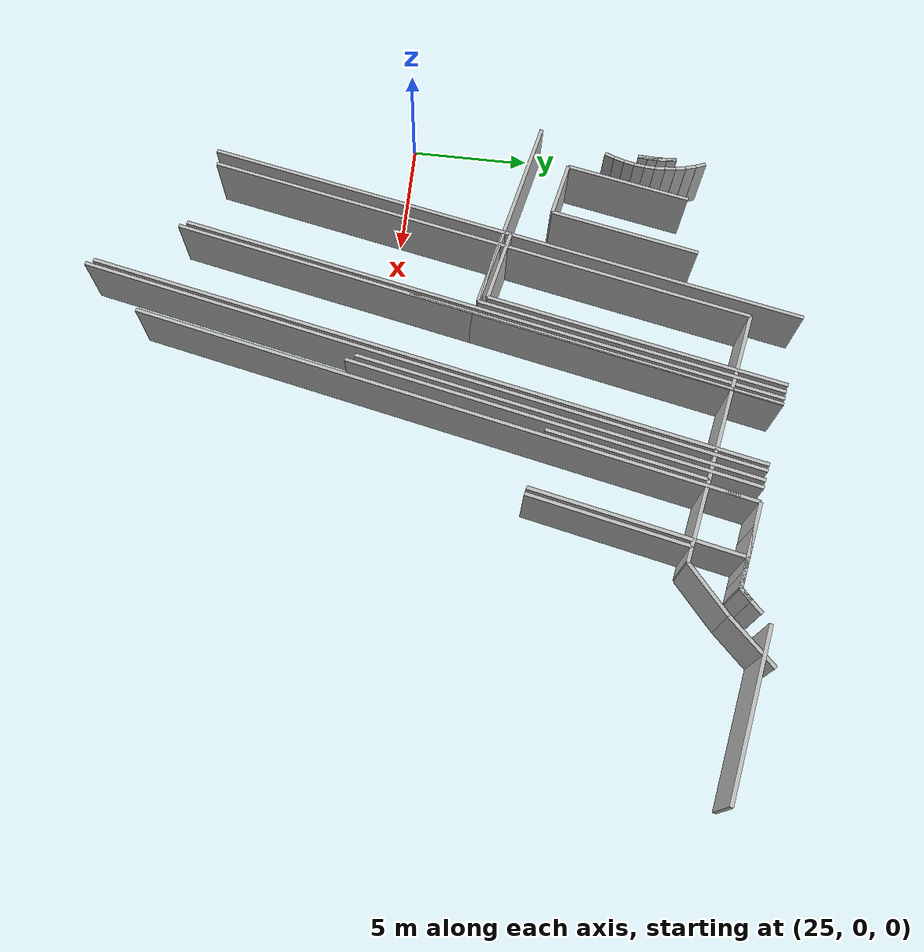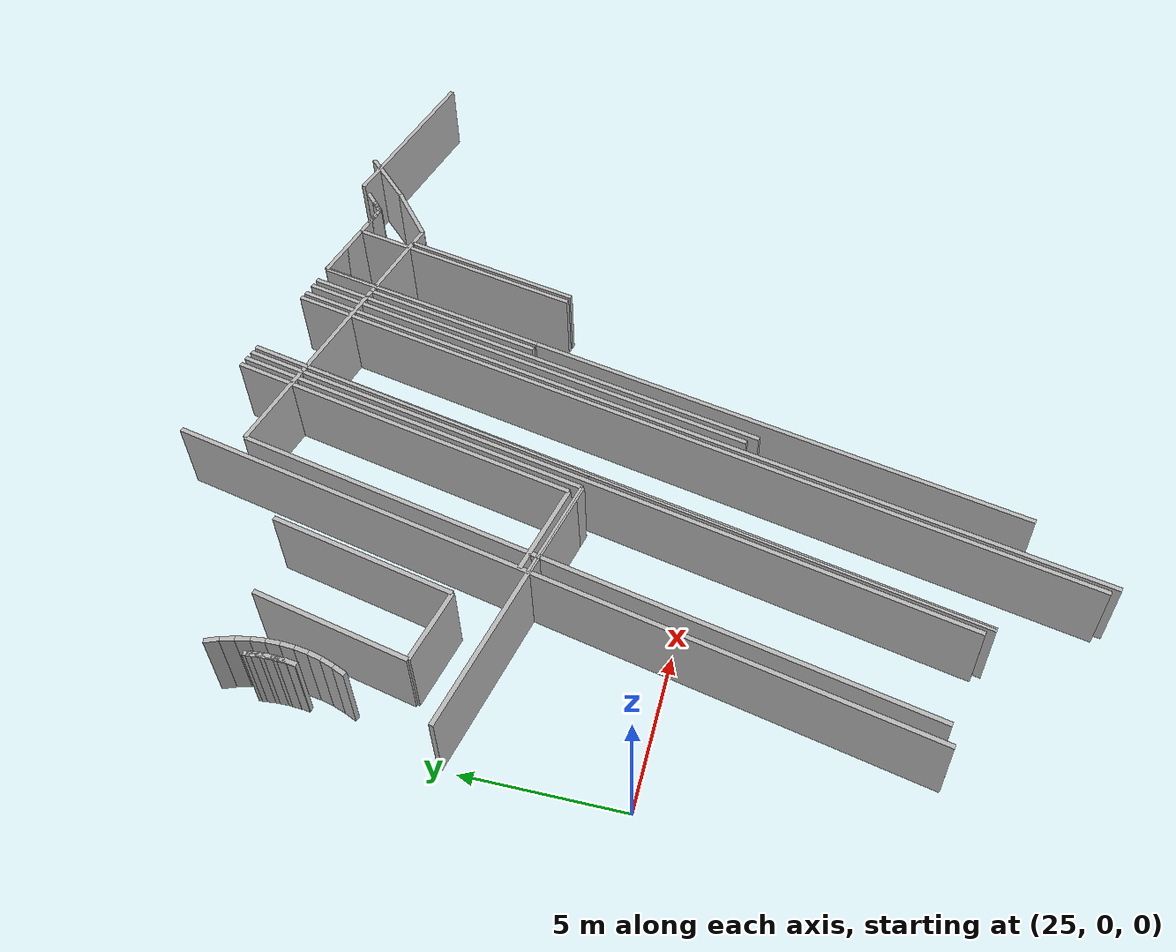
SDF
<sdf version="1.6">
 <model name="sps_2304">
  <static>1</static>
  <allow_auto_disable>0</allow_auto_disable>
  <link name="Wall254">
   <collision name="collision"><geometry><box><size>8.3108 0.15 2.5</size></box></geometry></collision>
   <visual name="visual">
    <geometry><box><size>8.3108 0.15 2.5</size></box></geometry>
    <transparency>0.0</transparency>
   </visual>
   <pose>42.1886 10.2351 1.25 0 -0 1.35655</pose>
  </link>
  <link name="Wall552">
   <collision name="collision"><geometry><box><size>22.8558 0.15 2.5</size></box></geometry></collision>
   <visual name="visual">
    <geometry><box><size>22.8558 0.15 2.5</size></box></geometry>
    <transparency>0.0</transparency>
   </visual>
   <pose>30.7377 3.23228 1.25 0 0 -1.78505</pose>
  </link>
  <link name="Wall553">
   <collision name="collision"><geometry><box><size>12.4002 0.15 2.5</size></box></geometry></collision>
   <visual name="visual">
    <geometry><box><size>12.4002 0.15 2.5</size></box></geometry>
    <transparency>0.0</transparency>
   </visual>
   <pose>35.011 9.70119 1.25 0 0 -1.78507</pose>
  </link>
  <link name="Wall555">
   <collision name="collision"><geometry><box><size>8.30986 0.15 2.5</size></box></geometry></collision>
   <visual name="visual">
    <geometry><box><size>8.30986 0.15 2.5</size></box></geometry>
    <transparency>0.0</transparency>
   </visual>
   <pose>40.0387 10.7024 1.25 0 -0 1.35652</pose>
  </link>
  <link name="Wall849">
   <collision name="collision"><geometry><box><size>6.31114 0.15 2.5</size></box></geometry></collision>
   <visual name="visual">
    <geometry><box><size>6.31114 0.15 2.5</size></box></geometry>
    <transparency>0.0</transparency>
   </visual>
   <pose>42.2203 9.20488 1.25 0 -0 1.35652</pose>
  </link>
  <link name="Wall1447">
   <collision name="collision"><geometry><box><size>3.10017 0.15 2.5</size></box></geometry></collision>
   <visual name="visual">
    <geometry><box><size>3.10017 0.15 2.5</size></box></geometry>
    <transparency>0.0</transparency>
   </visual>
   <pose>31.9487 4.32939 1.25 0 -0 2.92727</pose>
  </link>
  <link name="Wall1448">
   <collision name="collision"><geometry><box><size>24.8573 0.15 2.5</size></box></geometry></collision>
   <visual name="visual">
    <geometry><box><size>24.8573 0.15 2.5</size></box></geometry>
    <transparency>0.0</transparency>
   </visual>
   <pose>33.9795 3.55119 1.25 0 0 -1.78504</pose>
  </link>
  <link name="Wall1450">
   <collision name="collision"><geometry><box><size>25.1073 0.15 2.5</size></box></geometry></collision>
   <visual name="visual">
    <geometry><box><size>25.1073 0.15 2.5</size></box></geometry>
    <transparency>0.0</transparency>
   </visual>
   <pose>34.1974 3.37587 1.25 0 0 -1.78505</pose>
  </link>
  <link name="Wall1453">
   <collision name="collision"><geometry><box><size>7.25003 0.15 2.5</size></box></geometry></collision>
   <visual name="visual">
    <geometry><box><size>7.25003 0.15 2.5</size></box></geometry>
    <transparency>0.0</transparency>
   </visual>
   <pose>36.71 13.6299 1.25 0 0 -0.213756</pose>
  </link>
  <link name="Wall1760">
   <collision name="collision"><geometry><box><size>3.4001 0.15 2.5</size></box></geometry></collision>
   <visual name="visual">
    <geometry><box><size>3.4001 0.15 2.5</size></box></geometry>
    <transparency>0.0</transparency>
   </visual>
   <pose>32.0315 4.00429 1.25 0 -0 2.92738</pose>
  </link>
  <link name="Wall1761">
   <collision name="collision"><geometry><box><size>12.1003 0.15 2.5</size></box></geometry></collision>
   <visual name="visual">
    <geometry><box><size>12.1003 0.15 2.5</size></box></geometry>
    <transparency>0.0</transparency>
   </visual>
   <pose>34.7497 9.91151 1.25 0 0 -1.78505</pose>
  </link>
  <link name="Wall1763">
   <collision name="collision"><geometry><box><size>27.7072 0.15 2.5</size></box></geometry></collision>
   <visual name="visual">
    <geometry><box><size>27.7072 0.15 2.5</size></box></geometry>
    <transparency>0.0</transparency>
   </visual>
   <pose>36.4614 1.55287 1.25 0 0 -1.78506</pose>
  </link>
  <link name="Wall1765">
   <collision name="collision"><geometry><box><size>16.1998 0.15 2.5</size></box></geometry></collision>
   <visual name="visual">
    <geometry><box><size>16.1998 0.15 2.5</size></box></geometry>
    <transparency>0.0</transparency>
   </visual>
   <pose>38.3202 7.0366 1.25 0 0 -1.78505</pose>
  </link>
  <link name="Wall1766">
   <collision name="collision"><geometry><box><size>6.30947 0.15 2.5</size></box></geometry></collision>
   <visual name="visual">
    <geometry><box><size>6.30947 0.15 2.5</size></box></geometry>
    <transparency>0.0</transparency>
   </visual>
   <pose>39.5817 9.7783 1.25 0 -0 1.35656</pose>
  </link>
  <link name="Wall1768">
   <collision name="collision"><geometry><box><size>2.70021 0.15 2.5</size></box></geometry></collision>
   <visual name="visual">
    <geometry><box><size>2.70021 0.15 2.5</size></box></geometry>
    <transparency>0.0</transparency>
   </visual>
   <pose>41.5719 12.5746 1.25 0 0 -0.213692</pose>
  </link>
  <link name="Wall1769">
   <collision name="collision"><geometry><box><size>0.630111 0.15 2.5</size></box></geometry></collision>
   <visual name="visual">
    <geometry><box><size>0.630111 0.15 2.5</size></box></geometry>
    <transparency>0.0</transparency>
   </visual>
   <pose>43.1991 12.2215 1.25 0 0 -0.213657</pose>
  </link>
  <link name="Wall1770">
   <collision name="collision"><geometry><box><size>1.19396 0.15 2.5</size></box></geometry></collision>
   <visual name="visual">
    <geometry><box><size>1.19396 0.15 2.5</size></box></geometry>
    <transparency>0.0</transparency>
   </visual>
   <pose>43.6554 14.1689 1.25 0 0 -0.213668</pose>
  </link>
  <link name="Wall2076">
   <collision name="collision"><geometry><box><size>27.9574 0.15 2.5</size></box></geometry></collision>
   <visual name="visual">
    <geometry><box><size>27.9574 0.15 2.5</size></box></geometry>
    <transparency>0.0</transparency>
   </visual>
   <pose>36.6792 1.37761 1.25 0 0 -1.78505</pose>
  </link>
  <link name="Wall2077">
   <collision name="collision"><geometry><box><size>16.5001 0.15 2.5</size></box></geometry></collision>
   <visual name="visual">
    <geometry><box><size>16.5001 0.15 2.5</size></box></geometry>
    <transparency>0.0</transparency>
   </visual>
   <pose>38.5814 6.82631 1.25 0 0 -1.78505</pose>
  </link>
  <link name="Wall2081">
   <collision name="collision"><geometry><box><size>6.41308 0.15 2.5</size></box></geometry></collision>
   <visual name="visual">
    <geometry><box><size>6.41308 0.15 2.5</size></box></geometry>
    <transparency>0.0</transparency>
   </visual>
   <pose>48.5419 14.4247 1.25 0 0 -0.214271</pose>
  </link>
  <link name="Wall2398">
   <collision name="collision"><geometry><box><size>25.0965 0.15 2.5</size></box></geometry></collision>
   <visual name="visual">
    <geometry><box><size>25.0965 0.15 2.5</size></box></geometry>
    <transparency>0.0</transparency>
   </visual>
   <pose>30.3366 4.2104 1.25 0 0 -1.78506</pose>
  </link>
  <link name="Wall2400">
   <collision name="collision"><geometry><box><size>2.19988 0.15 2.5</size></box></geometry></collision>
   <visual name="visual">
    <geometry><box><size>2.19988 0.15 2.5</size></box></geometry>
    <transparency>0.0</transparency>
   </visual>
   <pose>41.9972 14.5289 1.25 0 0 -0.213818</pose>
  </link>
  <link name="Wall5077">
   <collision name="collision"><geometry><box><size>25.1095 0.15 2.5</size></box></geometry></collision>
   <visual name="visual">
    <geometry><box><size>25.1095 0.15 2.5</size></box></geometry>
    <transparency>0.0</transparency>
   </visual>
   <pose>38.2529 2.49458 1.25 0 -0 1.35654</pose>
  </link>
  <link name="Wall5078">
   <collision name="collision"><geometry><box><size>2.19988 0.15 2.5</size></box></geometry></collision>
   <visual name="visual">
    <geometry><box><size>2.19988 0.15 2.5</size></box></geometry>
    <transparency>0.0</transparency>
   </visual>
   <pose>41.9972 14.5289 1.25 0 0 -0.213818</pose>
  </link>
  <link name="Wall5079">
   <collision name="collision"><geometry><box><size>2.40081 0.15 2.5</size></box></geometry></collision>
   <visual name="visual">
    <geometry><box><size>2.40081 0.15 2.5</size></box></geometry>
    <transparency>0.0</transparency>
   </visual>
   <pose>27.9911 6.52711 1.25 0 -0 2.92873</pose>
  </link>
  <link name="Wall5080">
   <collision name="collision"><geometry><box><size>5.15287 0.15 2.5</size></box></geometry></collision>
   <visual name="visual">
    <geometry><box><size>5.15287 0.15 2.5</size></box></geometry>
    <transparency>0.0</transparency>
   </visual>
   <pose>27.3621 9.29899 1.25 0 -0 1.35793</pose>
  </link>
  <link name="Wall7827">
   <collision name="collision"><geometry><box><size>0.564796 0.15 2.5</size></box></geometry></collision>
   <visual name="visual">
    <geometry><box><size>0.564796 0.15 2.5</size></box></geometry>
    <transparency>0.0</transparency>
   </visual>
   <pose>44.8757 14.6004 1.25 0 0 -2.39449</pose>
  </link>
  <link name="Wall7828">
   <collision name="collision"><geometry><box><size>0.564654 0.15 2.5</size></box></geometry></collision>
   <visual name="visual">
    <geometry><box><size>0.564654 0.15 2.5</size></box></geometry>
    <transparency>0.0</transparency>
   </visual>
   <pose>44.4571 14.2214 1.25 0 0 -2.41715</pose>
  </link>
  <link name="Wall7829">
   <collision name="collision"><geometry><box><size>0.0104799 0.15 2.5</size></box></geometry></collision>
   <visual name="visual">
    <geometry><box><size>0.0104799 0.15 2.5</size></box></geometry>
    <transparency>0.0</transparency>
   </visual>
   <pose>44.2422 14.0383 1.25 0 -0 2.27374</pose>
  </link>
  <link name="Wall7830">
   <collision name="collision"><geometry><box><size>1.19396 0.15 2.5</size></box></geometry></collision>
   <visual name="visual">
    <geometry><box><size>1.19396 0.15 2.5</size></box></geometry>
    <transparency>0.0</transparency>
   </visual>
   <pose>43.6554 14.1689 1.25 0 -0 2.92793</pose>
  </link>
  <link name="Wall7831">
   <collision name="collision"><geometry><box><size>2.19988 0.15 2.5</size></box></geometry></collision>
   <visual name="visual">
    <geometry><box><size>2.19988 0.15 2.5</size></box></geometry>
    <transparency>0.0</transparency>
   </visual>
   <pose>41.9972 14.5289 1.25 0 -0 2.92777</pose>
  </link>
  <link name="Wall9968">
   <collision name="collision"><geometry><box><size>25.1073 0.15 2.5</size></box></geometry></collision>
   <visual name="visual">
    <geometry><box><size>25.1073 0.15 2.5</size></box></geometry>
    <transparency>0.0</transparency>
   </visual>
   <pose>34.1974 3.37587 1.25 0 -0 1.35655</pose>
  </link>
  <link name="Wall10478">
   <collision name="collision"><geometry><box><size>16.1998 0.15 2.5</size></box></geometry></collision>
   <visual name="visual">
    <geometry><box><size>16.1998 0.15 2.5</size></box></geometry>
    <transparency>0.0</transparency>
   </visual>
   <pose>38.3202 7.0366 1.25 0 0 -1.78505</pose>
  </link>
  <link name="Wall10508">
   <collision name="collision"><geometry><box><size>8.83452 0.15 2.5</size></box></geometry></collision>
   <visual name="visual">
    <geometry><box><size>8.83452 0.15 2.5</size></box></geometry>
    <transparency>0.0</transparency>
   </visual>
   <pose>29.3764 4.58198 1.25 0 0 -0.21423</pose>
  </link>
  <link name="Wall10580">
   <collision name="collision"><geometry><box><size>0.39698 0.15 2.5</size></box></geometry></collision>
   <visual name="visual">
    <geometry><box><size>0.39698 0.15 2.5</size></box></geometry>
    <transparency>0.0</transparency>
   </visual>
   <pose>25.9905 11.0691 1.25 0 0 -1.44051</pose>
  </link>
  <link name="Wall10581">
   <collision name="collision"><geometry><box><size>0.396919 0.15 2.5</size></box></geometry></collision>
   <visual name="visual">
    <geometry><box><size>0.396919 0.15 2.5</size></box></geometry>
    <transparency>0.0</transparency>
   </visual>
   <pose>26.0249 10.674 1.25 0 0 -1.52742</pose>
  </link>
  <link name="Wall10582">
   <collision name="collision"><geometry><box><size>0.396988 0.15 2.5</size></box></geometry></collision>
   <visual name="visual">
    <geometry><box><size>0.396988 0.15 2.5</size></box></geometry>
    <transparency>0.0</transparency>
   </visual>
   <pose>26.0248 10.2774 1.25 0 0 -1.61463</pose>
  </link>
  <link name="Wall10583">
   <collision name="collision"><geometry><box><size>0.39683 0.15 2.5</size></box></geometry></collision>
   <visual name="visual">
    <geometry><box><size>0.39683 0.15 2.5</size></box></geometry>
    <transparency>0.0</transparency>
   </visual>
   <pose>25.9902 9.8824 1.25 0 0 -1.70175</pose>
  </link>
  <link name="Wall11260">
   <collision name="collision"><geometry><box><size>0.393345 0.15 2.5</size></box></geometry></collision>
   <visual name="visual">
    <geometry><box><size>0.393345 0.15 2.5</size></box></geometry>
    <transparency>0.0</transparency>
   </visual>
   <pose>25.9834 10.9878 1.25 0 0 -1.46134</pose>
  </link>
  <link name="Wall11261">
   <collision name="collision"><geometry><box><size>0.393536 0.15 2.5</size></box></geometry></collision>
   <visual name="visual">
    <geometry><box><size>0.393536 0.15 2.5</size></box></geometry>
    <transparency>0.0</transparency>
   </visual>
   <pose>26.0094 10.5956 1.25 0 0 -1.54784</pose>
  </link>
  <link name="Wall11262">
   <collision name="collision"><geometry><box><size>0.393387 0.15 2.5</size></box></geometry></collision>
   <visual name="visual">
    <geometry><box><size>0.393387 0.15 2.5</size></box></geometry>
    <transparency>0.0</transparency>
   </visual>
   <pose>26.0013 10.2026 1.25 0 0 -1.63492</pose>
  </link>
  <link name="Wall16814">
   <collision name="collision"><geometry><box><size>0.396822 0.15 2.5</size></box></geometry></collision>
   <visual name="visual">
    <geometry><box><size>0.396822 0.15 2.5</size></box></geometry>
    <transparency>0.0</transparency>
   </visual>
   <pose>25.982 9.90199 1.25 0 -0 1.43999</pose>
  </link>
  <link name="Wall16815">
   <collision name="collision"><geometry><box><size>0.396988 0.15 2.5</size></box></geometry></collision>
   <visual name="visual">
    <geometry><box><size>0.396988 0.15 2.5</size></box></geometry>
    <transparency>0.0</transparency>
   </visual>
   <pose>26.0165 10.297 1.25 0 -0 1.52696</pose>
  </link>
  <link name="Wall16816">
   <collision name="collision"><geometry><box><size>0.396977 0.15 2.5</size></box></geometry></collision>
   <visual name="visual">
    <geometry><box><size>0.396977 0.15 2.5</size></box></geometry>
    <transparency>0.0</transparency>
   </visual>
   <pose>26.0167 10.6936 1.25 0 -0 1.61401</pose>
  </link>
  <link name="Wall16817">
   <collision name="collision"><geometry><box><size>0.396928 0.15 2.5</size></box></geometry></collision>
   <visual name="visual">
    <geometry><box><size>0.396928 0.15 2.5</size></box></geometry>
    <transparency>0.0</transparency>
   </visual>
   <pose>25.9823 11.0887 1.25 0 -0 1.70125</pose>
  </link>
  <link name="Wall16881">
   <collision name="collision"><geometry><box><size>2.31539 0.15 2.5</size></box></geometry></collision>
   <visual name="visual">
    <geometry><box><size>2.31539 0.15 2.5</size></box></geometry>
    <transparency>0.0</transparency>
   </visual>
   <pose>44.4007 12.8906 1.25 0 -0 0.688862</pose>
  </link>
  <link name="Wall16882">
   <collision name="collision"><geometry><box><size>2.31525 0.15 2.5</size></box></geometry></collision>
   <visual name="visual">
    <geometry><box><size>2.31525 0.15 2.5</size></box></geometry>
    <transparency>0.0</transparency>
   </visual>
   <pose>46.119 14.439 1.25 0 -0 0.778016</pose>
  </link>
  <link name="Wall24017">
   <collision name="collision"><geometry><box><size>0.399812 0.15 2.5</size></box></geometry></collision>
   <visual name="visual">
    <geometry><box><size>0.399812 0.15 2.5</size></box></geometry>
    <transparency>0.0</transparency>
   </visual>
   <pose>25.9986 10.1699 1.25 0 -0 1.49975</pose>
  </link>
  <link name="Wall24018">
   <collision name="collision"><geometry><box><size>0.399896 0.15 2.5</size></box></geometry></collision>
   <visual name="visual">
    <geometry><box><size>0.399896 0.15 2.5</size></box></geometry>
    <transparency>0.0</transparency>
   </visual>
   <pose>26.0095 10.5692 1.25 0 -0 1.58728</pose>
  </link>
  <link name="Wall24019">
   <collision name="collision"><geometry><box><size>0.399775 0.15 2.5</size></box></geometry></collision>
   <visual name="visual">
    <geometry><box><size>0.399775 0.15 2.5</size></box></geometry>
    <transparency>0.0</transparency>
   </visual>
   <pose>25.9853 10.9679 1.25 0 -0 1.67557</pose>
  </link>
  <link name="Wall27048">
   <collision name="collision"><geometry><box><size>2.40081 0.15 2.5</size></box></geometry></collision>
   <visual name="visual">
    <geometry><box><size>2.40081 0.15 2.5</size></box></geometry>
    <transparency>0.0</transparency>
   </visual>
   <pose>27.9911 6.52711 1.25 0 -0 2.92873</pose>
  </link>
  <link name="Wall27049">
   <collision name="collision"><geometry><box><size>5.15287 0.15 2.5</size></box></geometry></collision>
   <visual name="visual">
    <geometry><box><size>5.15287 0.15 2.5</size></box></geometry>
    <transparency>0.0</transparency>
   </visual>
   <pose>27.3621 9.29899 1.25 0 -0 1.35793</pose>
  </link>
  <link name="Wall27053">
   <collision name="collision"><geometry><box><size>6.14742 0.15 2.5</size></box></geometry></collision>
   <visual name="visual">
    <geometry><box><size>6.14742 0.15 2.5</size></box></geometry>
    <transparency>0.0</transparency>
   </visual>
   <pose>29.814 9.27782 1.25 0 0 -1.78371</pose>
  </link>
  <link name="Wall29036">
   <collision name="collision"><geometry><box><size>0.435209 0.15 2.5</size></box></geometry></collision>
   <visual name="visual">
    <geometry><box><size>0.435209 0.15 2.5</size></box></geometry>
    <transparency>0.0</transparency>
   </visual>
   <pose>26.0637 8.48979 1.25 0 -0 1.15992</pose>
  </link>
  <link name="Wall29037">
   <collision name="collision"><geometry><box><size>0.435317 0.15 2.5</size></box></geometry></collision>
   <visual name="visual">
    <geometry><box><size>0.435317 0.15 2.5</size></box></geometry>
    <transparency>0.0</transparency>
   </visual>
   <pose>26.2201 8.89558 1.25 0 -0 1.2463</pose>
  </link>
  <link name="Wall29038">
   <collision name="collision"><geometry><box><size>0.435256 0.15 2.5</size></box></geometry></collision>
   <visual name="visual">
    <geometry><box><size>0.435256 0.15 2.5</size></box></geometry>
    <transparency>0.0</transparency>
   </visual>
   <pose>26.3407 9.3134 1.25 0 -0 1.33327</pose>
  </link>
  <link name="Wall29039">
   <collision name="collision"><geometry><box><size>0.435295 0.15 2.5</size></box></geometry></collision>
   <visual name="visual">
    <geometry><box><size>0.435295 0.15 2.5</size></box></geometry>
    <transparency>0.0</transparency>
   </visual>
   <pose>26.4246 9.7401 1.25 0 -0 1.42006</pose>
  </link>
  <link name="Wall29040">
   <collision name="collision"><geometry><box><size>0.435278 0.15 2.5</size></box></geometry></collision>
   <visual name="visual">
    <geometry><box><size>0.435278 0.15 2.5</size></box></geometry>
    <transparency>0.0</transparency>
   </visual>
   <pose>26.4712 10.1725 1.25 0 -0 1.50681</pose>
  </link>
  <link name="Wall29041">
   <collision name="collision"><geometry><box><size>0.435357 0.15 2.5</size></box></geometry></collision>
   <visual name="visual">
    <geometry><box><size>0.435357 0.15 2.5</size></box></geometry>
    <transparency>0.0</transparency>
   </visual>
   <pose>26.4801 10.6073 1.25 0 -0 1.59379</pose>
  </link>
  <link name="Wall29042">
   <collision name="collision"><geometry><box><size>0.435209 0.15 2.5</size></box></geometry></collision>
   <visual name="visual">
    <geometry><box><size>0.435209 0.15 2.5</size></box></geometry>
    <transparency>0.0</transparency>
   </visual>
   <pose>26.4513 11.0412 1.25 0 -0 1.67998</pose>
  </link>
  <link name="Wall29043">
   <collision name="collision"><geometry><box><size>0.435133 0.15 2.5</size></box></geometry></collision>
   <visual name="visual">
    <geometry><box><size>0.435133 0.15 2.5</size></box></geometry>
    <transparency>0.0</transparency>
   </visual>
   <pose>26.3852 11.4709 1.25 0 -0 1.76731</pose>
  </link>
  <link name="Wall29044">
   <collision name="collision"><geometry><box><size>0.435301 0.15 2.5</size></box></geometry></collision>
   <visual name="visual">
    <geometry><box><size>0.435301 0.15 2.5</size></box></geometry>
    <transparency>0.0</transparency>
   </visual>
   <pose>26.282 11.8933 1.25 0 -0 1.85343</pose>
  </link>
  <link name="Wall29045">
   <collision name="collision"><geometry><box><size>0.435225 0.15 2.5</size></box></geometry></collision>
   <visual name="visual">
    <geometry><box><size>0.435225 0.15 2.5</size></box></geometry>
    <transparency>0.0</transparency>
   </visual>
   <pose>26.1426 12.3052 1.25 0 -0 1.94086</pose>
  </link>
  <link name="Wall32311">
   <collision name="collision"><geometry><box><size>0.564654 0.15 2.5</size></box></geometry></collision>
   <visual name="visual">
    <geometry><box><size>0.564654 0.15 2.5</size></box></geometry>
    <transparency>0.0</transparency>
   </visual>
   <pose>44.4571 14.2214 1.25 0 -0 0.724443</pose>
  </link>
 </model>
</sdf>
